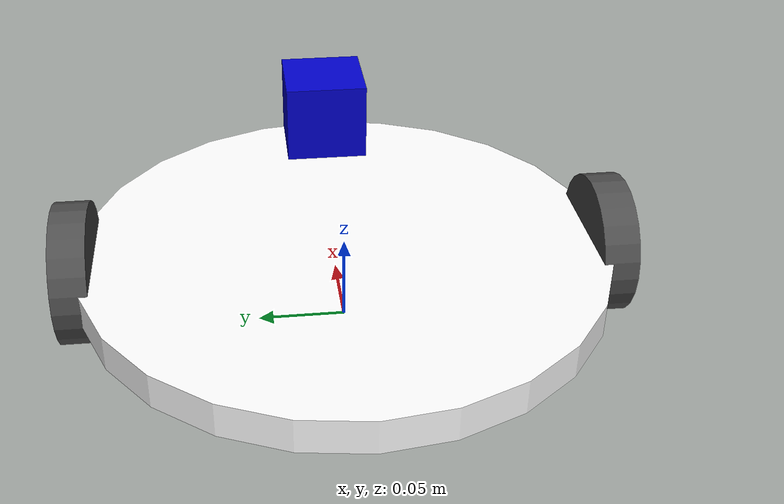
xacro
<?xml version="1.0"?>
<robot name="differential_wheeled_robot" xmlns:xacro="http://www.ros.org/wiki/xacro">

  <xacro:include filename="$(find mastering_ros_robot_description_pkg)/urdf/wheel.urdf.xacro" />

<!-- Defining the colors used in this robot -->
  <material name="Black">
    <color rgba="0.0 0.0 0.0 1.0"/>
  </material>

  <material name="Red">
    <color rgba="0.8 0.0 0.0 1.0"/>
  </material>

  <material name="White">
    <color rgba="1.0 1.0 1.0 1.0"/>
  </material>

  <material name="Blue">
    <color rgba="0.0 0.0 0.8 1.0"/>
  </material>

  <!-- PROPERTY LIST -->
  <!--All units in m-kg-s-radians unit system -->
  <property name="M_PI" value="3.1415926535897931" />
  <property name="M_PI_2" value="1.570796327" />
  <property name="DEG_TO_RAD" value="0.017453293" />

  <!-- Main body radius and height -->
  <!-- Main Body Cylinder base   -->
  <property name="base_height" value="0.02" />
  <property name="base_radius" value="0.15" />
  <property name="base_mass" value="5" /> <!-- in kg-->

  <!-- Wheels -->
<!-- in kg-->

  <property name="base_x_origin_to_wheel_origin" value="0.25" />
  <property name="base_y_origin_to_wheel_origin" value="0.3" />
  <property name="base_z_origin_to_wheel_origin" value="0.0" />

  <!-- Hokuyo Laser scanner -->
  <property name="hokuyo_size" value="0.05" />

  <!-- Macro for calculating inertia of cylinder -->
  <macro name="cylinder_inertia" params="m r h">
    <inertia  ixx="${m*(3*r*r+h*h)/12}" ixy = "0" ixz = "0"
              iyy="${m*(3*r*r+h*h)/12}" iyz = "0"
              izz="${m*r*r/2}" />
  </macro>

  <!-- BASE-FOOTPRINT -->
  <!-- base_footprint is a fictitious link(frame) that is on the ground right below base_link origin -->
  <link name="base_footprint">
    <inertial>
      <mass value="0.0001" />
      <origin xyz="0 0 0" />
      <inertia ixx="0.0001" ixy="0.0" ixz="0.0"
          iyy="0.0001" iyz="0.0"
          izz="0.0001" />
    </inertial>
    <visual>
        <origin xyz="0 0 0" rpy="0 0 0" />
        <geometry>
            <box size="0.001 0.001 0.001" />
        </geometry>
    </visual>
  </link>

  <gazebo reference="base_footprint">
    <turnGravityOff>false</turnGravityOff>
  </gazebo>

  <joint name="base_footprint_joint" type="fixed">
    <origin xyz="0 0 ${wheel_radius - base_z_origin_to_wheel_origin}" rpy="0 0 0" />
    <parent link="base_footprint"/>
    <child link="base_link" />
  </joint>

  <!-- BASE-LINK -->
  <!--Actual body/chassis of the robot-->
  <link name="base_link">
    <inertial>
      <mass value="${base_mass}" />
      <origin xyz="0 0 0" />
      <!--The 3x3 rotational inertia matrix. -->
        <cylinder_inertia  m="${base_mass}" r="${base_radius}" h="${base_height}" />

    </inertial>
    <visual>
      <origin xyz="0 0 0" rpy="0 0 0" />
      <geometry>

          <cylinder length="${base_height}" radius="${base_radius}" />

      </geometry>
      <material name="White" />
    </visual>
    <collision>
      <origin xyz="0 0 0" rpy="0 0 0 " />
      <geometry>

          <cylinder length="${base_height}" radius="${base_radius}" />

      </geometry>
    </collision>
  </link>
  <gazebo reference="base_link">
    <material>Gazebo/White</material>
    <turnGravityOff>false</turnGravityOff>
  </gazebo>

  <wheel fb="front" lr="right" parent="base_link" translateX="0" translateY="-0.5" flipY="-1"/>
  <wheel fb="front" lr="left" parent="base_link" translateX="0" translateY="0.5" flipY="-1"/>

  <!-- SENSORS -->

  <!-- hokuyo -->

  <link name="hokuyo_link">
    <visual>
      <origin xyz="0 0 0" rpy="0 0 0" />
      <geometry>
        <box size="${hokuyo_size} ${hokuyo_size} ${hokuyo_size}"/>
      </geometry>
      <material name="Blue" />
    </visual>
  </link>
  <joint name="hokuyo_joint" type="fixed">
    <origin xyz="${base_radius - hokuyo_size/2} 0 ${base_height+hokuyo_size/4}" rpy="0 0 0" />
    <parent link="base_link"/>
    <child link="hokuyo_link" />
  </joint>

  <gazebo reference="base_laser">
    <material>Gazebo/Blue</material>
    <turnGravityOff>false</turnGravityOff>
    <sensor type="ray" name="head_hokuyo_sensor">
      <pose>${hokuyo_size/2} 0 0 0 0 0</pose>
      <visualize>true</visualize>
      <update_rate>12</update_rate>
      <ray>
        <scan>
          <horizontal>
            <samples>720</samples>
            <resolution>1</resolution>
            <min_angle>-180</min_angle>
            <max_angle>180</max_angle>
          </horizontal>
        </scan>
        <range>
          <min>0.10</min>
          <max>10.0</max>
          <resolution>0.001</resolution>
        </range>
      </ray>
      <plugin name="gazebo_ros_head_hokuyo_controller" filename="libgazebo_ros_laser.so">
        <topicName>/scan</topicName>
        <frameName>laser_frame</frameName>
      </plugin>
    </sensor>
  </gazebo>

  <!-- DRIVE CONTROLLERS -->

  <!-- Skid steer drive controller -->
  <!-- Differential drive controller  -->

<gazebo>
    <plugin name="gazebo_ros_control" filename="libgazebo_ros_control.so" />
    <plugin filename="libgazebo_ros_joint_state_publisher.so" name="joint_state_publisher">
      <jointName>front_left_wheel_joint, front_right_wheel_joint</jointName>
      <updateRate>10.0</updateRate>
      <alwaysOn>true</alwaysOn>
    </plugin>
</gazebo>

  <!-- GPS Sensor -->

  <gazebo>
    <plugin name="novatel_gps_sim" filename="libhector_gazebo_ros_gps.so">
      <alwaysOn>1</alwaysOn>
      <updateRate>10.0</updateRate>
      <bodyName>base_footprint</bodyName>
      <topicName>fix</topicName>
      <velocityTopicName>fix_velocity</velocityTopicName>
      <drift>5.0 5.0 5.0</drift>
      <gaussianNoise>0.1 0.1 0.1</gaussianNoise>
      <velocityDrift>0 0 0</velocityDrift>
      <velocityGaussianNoise>0.1 0.1 0.1</velocityGaussianNoise>
    </plugin>
   </gazebo>

</robot>

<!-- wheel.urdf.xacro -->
<robot name="wheel" xmlns:xacro="http://www.ros.org/wiki/xacro">

  <!-- Wheels -->
  <property name="wheel_radius" value="0.04" />
  <property name="wheel_height" value="0.02" />
  <property name="wheel_mass" value="2.5" /> <!-- in kg-->

  <property name="base_x_origin_to_wheel_origin" value="0.25" />
  <property name="base_y_origin_to_wheel_origin" value="0.3" />
  <property name="base_z_origin_to_wheel_origin" value="0.0" />

  <macro name="cylinder_inertia" params="m r h">
    <inertia  ixx="${m*(3*r*r+h*h)/12}" ixy = "0" ixz = "0"
              iyy="${m*(3*r*r+h*h)/12}" iyz = "0"
              izz="${m*r*r/2}" />
  </macro>

  <xacro:macro name="wheel" params="fb lr parent translateX translateY flipY"> <!--fb : front, back ; lr: left, right -->
    <link name="${fb}_${lr}_wheel">
      <visual>
        <origin xyz="0 0 0" rpy="${flipY*M_PI/2} 0  0 " />
        <geometry>
          <cylinder length="${wheel_height}" radius="${wheel_radius}" />
        </geometry>
        <material name="DarkGray" />
      </visual>
      <collision>
        <origin xyz="0 0 0" rpy="${flipY*M_PI/2} 0 0 " />
        <geometry>
          <cylinder length="${wheel_height}" radius="${wheel_radius}" />
        </geometry>
      </collision>
      <inertial>
        <mass value="${wheel_mass}" />
        <origin xyz="0 0 0" />
        <cylinder_inertia  m="${wheel_mass}" r="${wheel_radius}" h="${wheel_height}" />
      </inertial>
    </link>

    <gazebo reference="${fb}_${lr}_wheel">
      <mu1 value="1.0"/>
      <mu2 value="1.0"/>
      <kp  value="10000000.0" />
      <kd  value="1.0" />
      <fdir1 value="1 0 0"/>
      <material>Gazebo/Grey</material>
      <turnGravityOff>false</turnGravityOff>
    </gazebo>

    <joint name="${fb}_${lr}_wheel_joint" type="continuous">
      <parent link="${parent}"/>
      <child link="${fb}_${lr}_wheel"/>
      <origin xyz="${translateX * base_x_origin_to_wheel_origin} ${translateY * base_y_origin_to_wheel_origin} ${base_z_origin_to_wheel_origin}" rpy="0 0 0" />
      <axis xyz="0 1 0" rpy="0  0" />
      <limit effort="100" velocity="100"/>
      <joint_properties damping="0.0" friction="0.0"/>
    </joint>

    <!-- Transmission is important to link the joints and the controller -->
    <transmission name="${fb}_${lr}_wheel_joint_trans">
      <type>transmission_interface/SimpleTransmission</type>
      <joint name="${fb}_${lr}_wheel_joint" />
      <actuator name="${fb}_${lr}_wheel_joint_motor">
        <hardwareInterface>EffortJointInterface</hardwareInterface>
        <mechanicalReduction>1</mechanicalReduction>
      </actuator>
    </transmission>

  </xacro:macro>
</robot>
